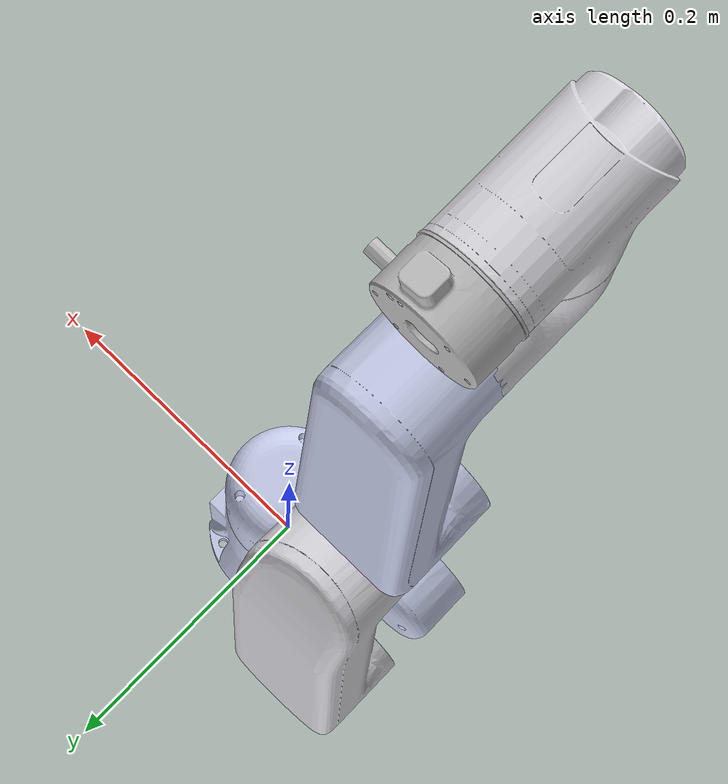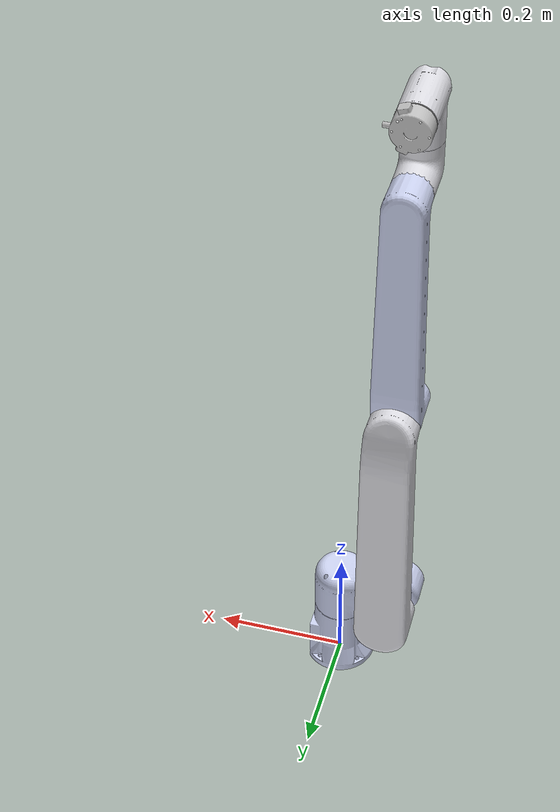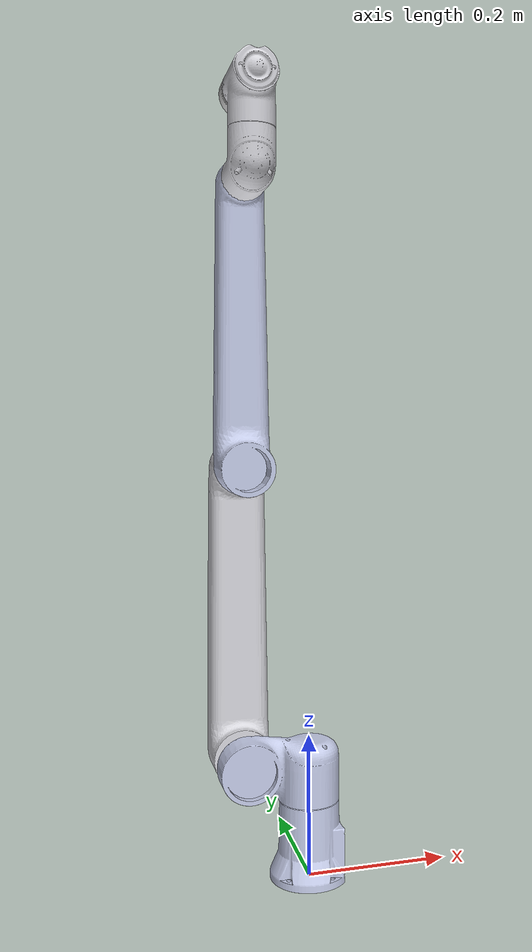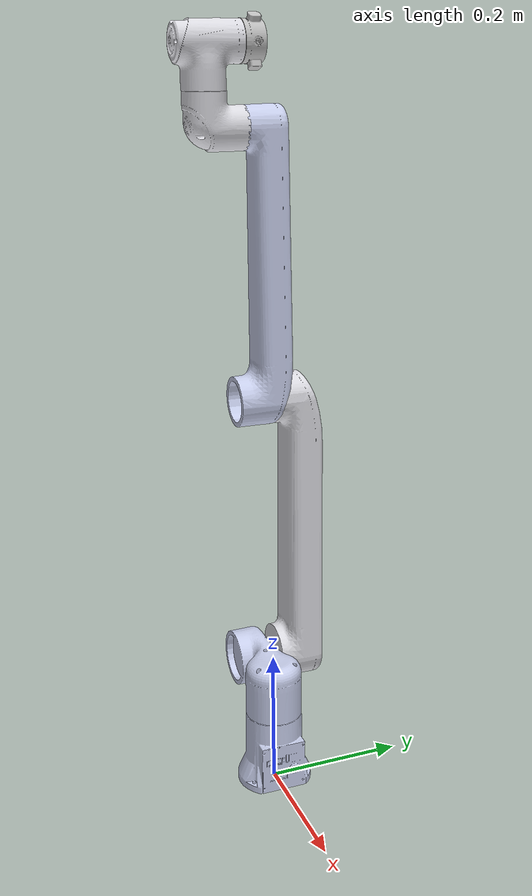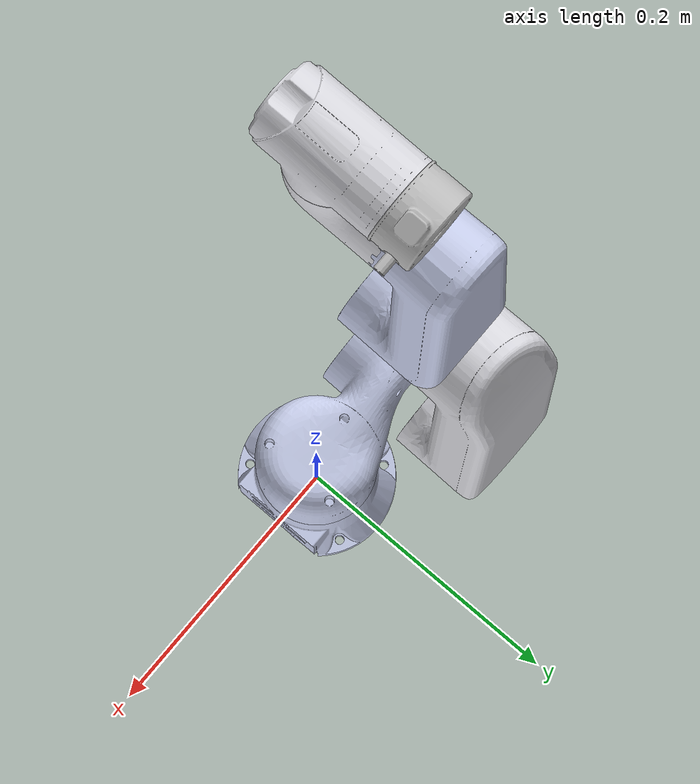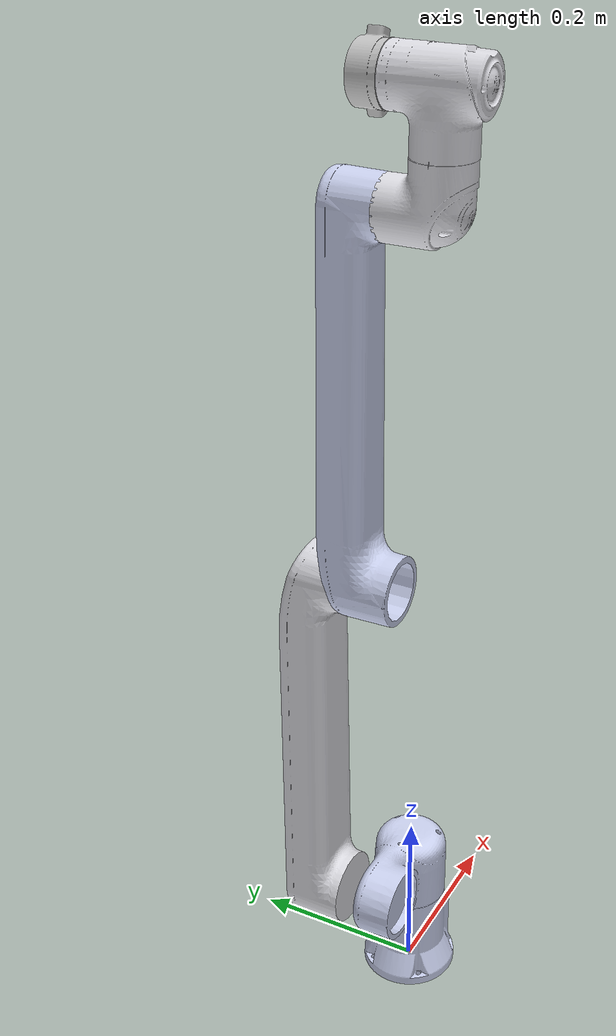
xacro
<?xml version="1.0"?>
<robot xmlns:xacro="http://www.ros.org/wiki/xacro" name="rm_eco63_description">
    <xacro:arg name="initial_positions_file" default="initial_positions.yaml" />

    <!-- Import rm_eco63_description urdf file -->
    <!-- arg->property -->
    <xacro:property name="link6_type" value="$(arg link6_type)" />
    <xacro:include filename="$(find rm_description)/urdf/rm_eco63.urdf.xacro" >
        link6_type:=$(arg link6_type)
    </xacro:include>
    <!-- Import control_xacro -->
    <xacro:include filename="rm_eco63_description.ros2_control.xacro" />

    <xacro:rm_eco63_description_ros2_control name="FakeSystem" initial_positions_file="$(arg initial_positions_file)"/>

</robot>

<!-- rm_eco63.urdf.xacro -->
<robot  name="rm_eco63" xmlns:xacro="http://www.ros.org/wiki/xacro">
    <!-- link6_type -->
    <xacro:arg name="link6_type" default="Link6" />
    <!-- arg->property -->
    <xacro:property name="link6_type" value="$(arg link6_type)" />
    <!-- KDL cannot use an inertial root link, so keep base_link under a massless root. -->
    <link name="base_root" />
    <joint name="base_root_joint" type="fixed">
      <origin xyz="0 0 0" rpy="0 0 0" />
      <parent link="base_root" />
      <child link="base_link" />
    </joint>
    <link
    name="base_link">
    <inertial>
      <origin
        xyz="-0.0819699961303711 -0.0464753726622393 0.526722271495911"
        rpy="0 0 0" />
      <mass
        value="8.97974481667473" />
      <inertia
        ixx="0.862297666639592"
        ixy="-0.00170110773340804"
        ixz="0.0134260863948258"
        iyy="0.853404080505364"
        iyz="-0.0335323790979435"
        izz="0.021909948868005" />
    </inertial>
    <visual>
      <origin
        xyz="0 0 0"
        rpy="0 0 0" />
      <geometry>
        <mesh
          filename="package://rm_description/meshes/rm_eco63_arm/base_link.STL" />
      </geometry>
      <material
        name="">
        <color
          rgba="0.792156862745098 0.819607843137255 0.933333333333333 1" />
      </material>
    </visual>
    <collision>
      <origin
        xyz="0 0 0"
        rpy="0 0 0" />
      <geometry>
        <mesh
          filename="package://rm_description/meshes/rm_eco63_arm/base_link.STL" />
      </geometry>
    </collision>
  </link>
  <link
    name="Link1">
    <inertial>
      <origin
        xyz="-0.0309493055609114 -0.0012728567226139 -0.00524336672353307"
        rpy="0 0 0" />
      <mass
        value="0.656374618338142" />
      <inertia
        ixx="0.000538922068295209"
        ixy="-6.49558484347273E-05"
        ixz="0.000104084843141859"
        iyy="0.00162201405585815"
        iyz="6.13990176963193E-06"
        izz="0.00151559483136641" />
    </inertial>
    <visual>
      <origin
        xyz="0 0 0"
        rpy="0 0 0" />
      <geometry>
        <mesh
          filename="package://rm_description/meshes/rm_eco63_arm/Link1.STL" />
      </geometry>
      <material
        name="">
        <color
          rgba="0.792156862745098 0.819607843137255 0.933333333333333 1" />
      </material>
    </visual>
    <collision>
      <origin
        xyz="0 0 0"
        rpy="0 0 0" />
      <geometry>
        <mesh
          filename="package://rm_description/meshes/rm_eco63_arm/Link1.STL" />
      </geometry>
    </collision>
  </link>
  <joint
    name="joint1"
    type="continuous">
    <origin
      xyz="0 0 0.1625"
      rpy="0 0 0" />
    <parent
      link="base_link" />
    <child
      link="Link1" />
    <axis
      xyz="0 0 1" />
    <limit
      effort="60"
      velocity="3.14" />
  </joint>
  <link
    name="Link2">
    <inertial>
      <origin
        xyz="0.194682247033962 -1.86346038127949E-07 0.0708742731440949"
        rpy="0 0 0" />
      <mass
        value="5.26262523683375" />
      <inertia
        ixx="0.00404170032131906"
        ixy="-5.65174393111021E-07"
        ixz="0.00121807022294723"
        iyy="0.109727764384232"
        iyz="-2.72124756899763E-09"
        izz="0.110681578185881" />
    </inertial>
    <visual>
      <origin
        xyz="0 0 0"
        rpy="0 0 0" />
      <geometry>
        <mesh
          filename="package://rm_description/meshes/rm_eco63_arm/Link2.STL" />
      </geometry>
      <material
        name="">
        <color
          rgba="0.866666666666667 0.866666666666667 0.890196078431372 1" />
      </material>
    </visual>
    <collision>
      <origin
        xyz="0 0 0"
        rpy="0 0 0" />
      <geometry>
        <mesh
          filename="package://rm_description/meshes/rm_eco63_arm/Link2.STL" />
      </geometry>
    </collision>
  </link>
  <joint
    name="joint2"
    type="revolute">
    <origin
      xyz="-0.086 0 0"
      rpy="1.5708 -1.5708 0" />
    <parent
      link="Link1" />
    <child
      link="Link2" />
    <axis
      xyz="0 0 -1" />
    <limit
      lower="-3.105"
      upper="2.355"
      effort="60"
      velocity="3.14" />
  </joint>
  <link
    name="Link3">
    <inertial>
      <origin
        xyz="0.179310475039839 1.86928912626616E-09 0.0308638630867258"
        rpy="0 0 0" />
      <mass
        value="1.3509329667983" />
      <inertia
        ixx="0.000796925531981305"
        ixy="-2.89740446981148E-08"
        ixz="-0.000607432295339128"
        iyy="0.0219803140031169"
        iyz="1.84171394643915E-08"
        izz="0.022157190260175" />
    </inertial>
    <visual>
      <origin
        xyz="0 0 0"
        rpy="0 0 0" />
      <geometry>
        <mesh
          filename="package://rm_description/meshes/rm_eco63_arm/Link3.STL" />
      </geometry>
      <material
        name="">
        <color
          rgba="0.792156862745098 0.819607843137255 0.933333333333333 1" />
      </material>
    </visual>
    <collision>
      <origin
        xyz="0 0 0"
        rpy="0 0 0" />
      <geometry>
        <mesh
          filename="package://rm_description/meshes/rm_eco63_arm/Link3.STL" />
      </geometry>
    </collision>
  </link>
  <joint
    name="joint3"
    type="revolute">
    <origin
      xyz="0.41 0 0"
      rpy="3.1416 -0.0087266 0" />
    <parent
      link="Link2" />
    <child
      link="Link3" />
    <axis
      xyz=" 0 0 1" />
    <limit
      lower="-2.93"
      upper="2.756"
      effort="30"
      velocity="3.14" />
  </joint>
  <link
    name="Link4">
    <inertial>
      <origin
        xyz="1.18737948139047E-06 -0.00995387687025817 0.0129236518197595"
        rpy="0 0 0" />
      <mass
        value="0.733001235394853" />
      <inertia
        ixx="0.000641256799113762"
        ixy="7.16323347889126E-09"
        ixz="-6.76890724051393E-09"
        iyy="0.000512473473605366"
        iyz="-0.000109077537111131"
        izz="0.000460316607732565" />
    </inertial>
    <visual>
      <origin
        xyz="0 0 0"
        rpy="0 0 0" />
      <geometry>
        <mesh
          filename="package://rm_description/meshes/rm_eco63_arm/Link4.STL" />
      </geometry>
      <material
        name="">
        <color
          rgba="0.866666666666667 0.866666666666667 0.890196078431372 1" />
      </material>
    </visual>
    <collision>
      <origin
        xyz="0 0 0"
        rpy="0 0 0" />
      <geometry>
        <mesh
          filename="package://rm_description/meshes/rm_eco63_arm/Link4.STL" />
      </geometry>
    </collision>
  </link>
  <joint
    name="joint4"
    type="continuous">
    <origin
      xyz="0.38049 0 -0.054981"
      rpy="-0.0087266 0 1.5708" />
    <parent
      link="Link3" />
    <child
      link="Link4" />
    <axis
      xyz="0 0 1" />
    <limit
      effort="10"
      velocity="3.14" />
  </joint>
  <link
    name="Link5">
    <inertial>
      <origin
        xyz="1.10373835336686E-06 0.00366306859871773 -0.0136222948606266"
        rpy="0 0 0" />
      <mass
        value="0.911747774463918" />
      <inertia
        ixx="0.000797250089831515"
        ixy="-3.0783066224908E-08"
        ixz="-1.86945083800088E-09"
        iyy="0.000572176795709541"
        iyz="-0.000145598908387624"
        izz="0.000625883738000052" />
    </inertial>
    <visual>
      <origin
        xyz="0 0 0"
        rpy="0 0 0" />
      <geometry>
        <mesh
          filename="package://rm_description/meshes/rm_eco63_arm/Link5.STL" />
      </geometry>
      <material
        name="">
        <color
          rgba="0.866666666666667 0.866666666666667 0.890196078431372 1" />
      </material>
    </visual>
    <collision>
      <origin
        xyz="0 0 0"
        rpy="0 0 0" />
      <geometry>
        <mesh
          filename="package://rm_description/meshes/rm_eco63_arm/Link5.STL" />
      </geometry>
    </collision>
  </link>
  <joint
    name="joint5"
    type="continuous">
    <origin
      xyz="0 -0.11 -0.0006"
      rpy="1.5708 0 0" />
    <parent
      link="Link4" />
    <child
      link="Link5" />
    <axis
      xyz="0 0 1" />
    <limit
      effort="10"
      velocity="3.14" />
  </joint>
    <xacro:if value="${ link6_type =='Link6' }">
        <link
    name="Link6">
    <inertial>
      <origin
        xyz="0.000922882083248047 -9.40199566012989E-05 -0.0127047090822767"
        rpy="0 0 0" />
      <mass
        value="0.065035417997418" />
      <inertia
        ixx="2.11425102567822E-05"
        ixy="-2.28752901090794E-08"
        ixz="-2.56006744332993E-08"
        iyy="1.81097258369991E-05"
        iyz="-1.0175060606431E-08"
        izz="3.19000225583591E-05" />
    </inertial>
    <visual>
      <origin
        xyz="0 0 0"
        rpy="0 0 0" />
      <geometry>
        <mesh
          filename="package://rm_description/meshes/rm_eco63_arm/Link6.STL" />
      </geometry>
      <material
        name="">
        <color
          rgba="0.752941176470588 0.752941176470588 0.752941176470588 1" />
      </material>
    </visual>
    <collision>
      <origin
        xyz="0 0 0"
        rpy="0 0 0" />
      <geometry>
        <mesh
          filename="package://rm_description/meshes/rm_eco63_arm/Link6.STL" />
      </geometry>
    </collision>
  </link>
  <joint
    name="joint6"
    type="continuous">
    <origin
      xyz="-0.00010641 0.0797 -0.00010731"
      rpy="-1.5708 0 0" />
    <parent
      link="Link5" />
    <child
      link="Link6" />
    <axis
      xyz="0 0 1" />
    <limit
      effort="10"
      velocity="3.14" />
  </joint>
    </xacro:if>
    <xacro:if value="${ link6_type =='Link6_6fb' }">
      <link
    name="Link6">
    <inertial>
      <origin
        xyz="0.000502798417250983 1.40039216558474E-05 -0.0166588848846901"
        rpy="0 0 0" />
      <mass
        value="0.151764173288042" />
      <inertia
        ixx="5.92991887697562E-05"
        ixy="-3.55096210035366E-08"
        ixz="9.38773298614362E-07"
        iyy="6.14480379976492E-05"
        iyz="-2.92670703712805E-08"
        izz="7.77928386927577E-05" />
    </inertial>
    <visual>
      <origin
        xyz="0 0 0"
        rpy="0 0 0" />
      <geometry>
        <mesh
          filename="package://rm_description/meshes/rm_eco63_arm/Link6_6fb.STL" />
      </geometry>
      <material
        name="">
        <color
          rgba="0.866666666666667 0.866666666666667 0.890196078431372 1" />
      </material>
    </visual>
    <collision>
      <origin
        xyz="0 0 0"
        rpy="0 0 0" />
      <geometry>
        <mesh
          filename="package://rm_description/meshes/rm_eco63_arm/Link6_6fb.STL" />
      </geometry>
    </collision>
  </link>
  <joint
    name="joint6"
    type="continuous">
    <origin
      xyz="0 0.0967 0"
      rpy="-1.5708 0 0" />
    <parent
      link="Link5" />
    <child
      link="Link6" />
    <axis
      xyz="0 0 1" />
    <limit
      effort="10"
      velocity="3.14" />
  </joint>
    </xacro:if>
</robot>
